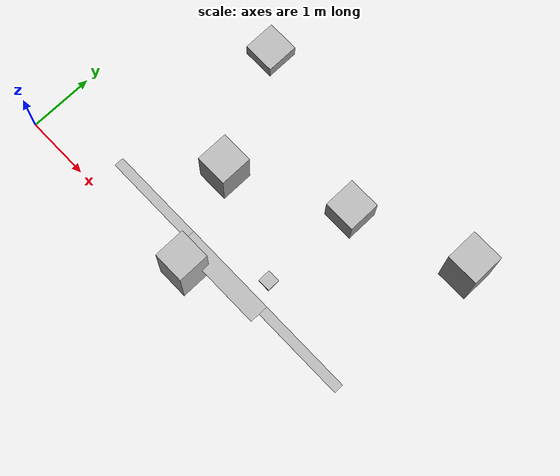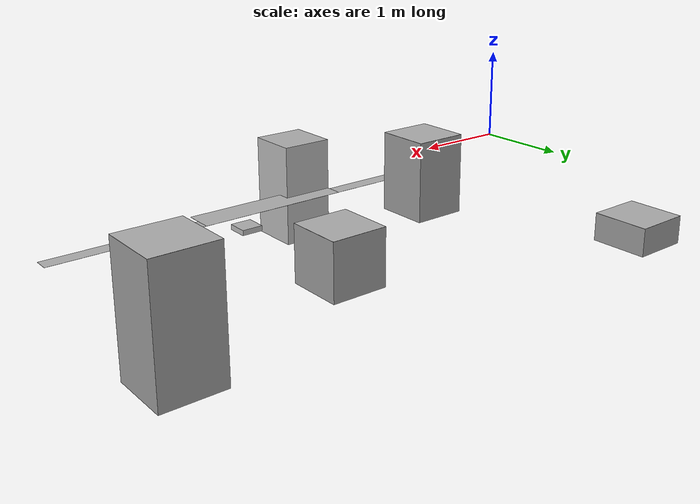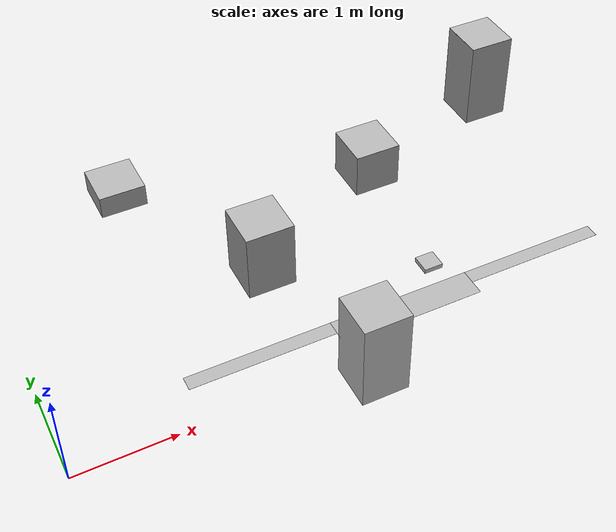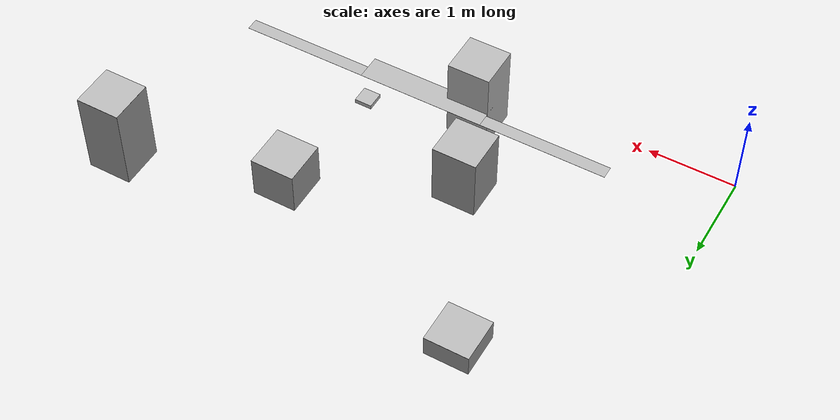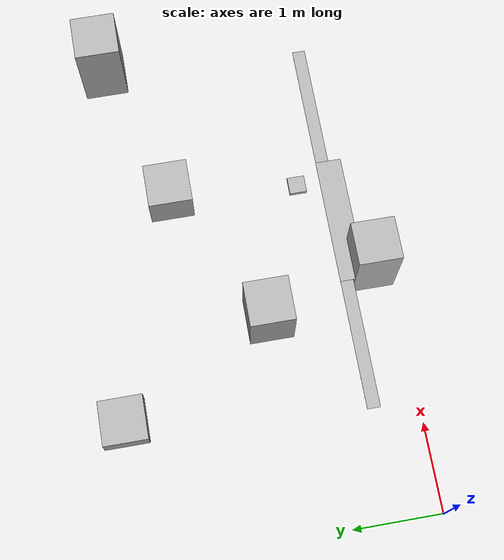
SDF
<sdf version="1.5">
 <world name="default">
  <include><uri>model://sun</uri></include>
  <include><uri>model://box-25</uri><name>box_25-1</name><pose>1.54635 3.2342 0.0 0 0 1.5708</pose></include>
  <include><uri>model://box-50</uri><name>box_50-1</name><pose>4.091 2.34534 0.0 0 0 3.1415</pose></include>
  <include><uri>model://box-75</uri><name>box_75-1</name><pose>2.45 1.47 0.0 0 0 0</pose></include>
  <include><uri>model://box-100</uri><name>box_100-1</name><pose>5.809 2.89 0.0 0 0 0</pose></include>
  <include><uri>model://line-15</uri><name>line-15-1</name><pose>2.0 0.5 0.0 0 0 0</pose></include>
  <include><uri>model://line-fat-15</uri><name>line-fat-15-1</name><pose>3.5 0.425738 0.0 0 0 0</pose></include>
  <include><uri>model://line-15</uri><name>line-15-2</name><pose>5.0 0.5 0.0 0 0 0</pose></include>
  <include><uri>model://redSquare</uri><name>redSquare-1</name><pose>3.0 0.15 0.01 0 0 0</pose></include>
  <include><uri>model://blueSquare</uri><name>blueSquare-1</name><pose>4.0 0.85 0.01 0 0 0</pose></include>
  <scene>
   <ambient>0.8 0.8 0.8 1</ambient>
   <background>0.8 0.9 1 1</background>
   <shadows>false</shadows>
   <grid>false</grid>
   <origin_visual>false</origin_visual>
  </scene>
  <physics name="default_physics" default="0" type="ode">
   <gravity>0 0 -9.8066</gravity>
   <ode>
    <solver>
     <type>quick</type>
     <iters>10</iters>
     <sor>1.3</sor>
     <use_dynamic_moi_rescaling>0</use_dynamic_moi_rescaling>
    </solver>
    <constraints>
     <cfm>0</cfm>
     <erp>0.2</erp>
     <contact_max_correcting_vel>100</contact_max_correcting_vel>
     <contact_surface_layer>0.001</contact_surface_layer>
    </constraints>
   </ode>
   <max_step_size>0.004</max_step_size>
   <real_time_factor>1</real_time_factor>
   <real_time_update_rate>250</real_time_update_rate>
   <magnetic_field>6.0e-6 2.3e-5 -4.2e-5</magnetic_field>
  </physics>
 </world>
</sdf>

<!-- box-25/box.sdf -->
<sdf version="1.5">
    <model name="box-25">
        <static>true</static>
        <link name="box-25_link">
            <pose>0.0 0.0 0.125 0 0 0</pose>
            <visual name="visual_box-25">
                <cast_shadows>false</cast_shadows>
                <geometry>
                    <box>
                        <size>0.5 0.5 0.25</size>
                    </box>
                </geometry>
                <material>
                    <script>
                        <uri>file://media/materials/scripts/gazebo.material</uri>
                        <name>Gazebo/Grey</name>
                    </script>
                </material>
            </visual>

            <collision name="collision_box-25">
                <geometry>
                    <box>
                        <size>0.5 0.5 0.25</size>
                    </box>
                </geometry>
            </collision>
        </link>

        <link name="box-25-clever_link">
            <pose>0.0 0.0 0.25 0 0 0</pose>
            <visual name="visual_box-25-clever">
                <cast_shadows>false</cast_shadows>
                <geometry>
                    <box>
                        <size>0.5 0.5 1e-3</size>
                    </box>
                </geometry>
                <material>
                    <script>
                        <uri>model://box-25/materials/scripts</uri>
                        <uri>model://box-25/materials/textures</uri>
                        <name>box25/qr-code</name>
                    </script>
                </material>
            </visual>
        </link>
    </model>
</sdf>

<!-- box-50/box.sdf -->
<sdf version="1.5">
    <model name="box-50">
        <static>true</static>
        <link name="box-50_link">
            <pose>0.0 0.0 0.25 0 0 0</pose>
            <visual name="visual_box-50">
                <cast_shadows>false</cast_shadows>
                <geometry>
                    <box>
                        <size>0.5 0.5 0.5</size>
                    </box>
                </geometry>
                <material>
                    <script>
                        <uri>file://media/materials/scripts/gazebo.material</uri>
                        <name>Gazebo/Grey</name>
                    </script>
                </material>
            </visual>

            <collision name="collision_box-25">
                <geometry>
                    <box>
                        <size>0.5 0.5 0.5</size>
                    </box>
                </geometry>
            </collision>
        </link>

        <link name="box-50-clever_link">
            <pose>0.0 0.0 0.5 0 0 0</pose>
            <visual name="visual_box-50-clever">
                <cast_shadows>false</cast_shadows>
                <geometry>
                    <box>
                        <size>0.5 0.5 1e-3</size>
                    </box>
                </geometry>
                <material>
                    <script>
                        <uri>model://box-50/materials/scripts</uri>
                        <uri>model://box-50/materials/textures</uri>
                        <name>box50/qr-code</name>
                    </script>
                </material>
            </visual>
        </link>
    </model>
</sdf>

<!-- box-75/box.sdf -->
<sdf version="1.5">
    <model name="box-75">
        <static>true</static>
        <link name="box-75_link">
            <pose>0.0 0.0 0.375 0 0 0</pose>
            <visual name="visual_box-75">
                <cast_shadows>false</cast_shadows>
                <geometry>
                    <box>
                        <size>0.5 0.5 0.75</size>
                    </box>
                </geometry>
                <material>
                    <script>
                        <uri>file://media/materials/scripts/gazebo.material</uri>
                        <name>Gazebo/Grey</name>
                    </script>
                </material>
            </visual>

            <collision name="collision_box-75">
                <geometry>
                    <box>
                        <size>0.5 0.5 0.75</size>
                    </box>
                </geometry>
            </collision>
        </link>

        <link name="box-75-clever_link">
            <pose>0.0 0.0 0.75 0 0 0</pose>
            <visual name="visual_box-75-clever">
                <cast_shadows>false</cast_shadows>
                <geometry>
                    <box>
                        <size>0.5 0.5 1e-3</size>
                    </box>
                </geometry>
                <material>
                    <script>
                        <uri>model://box-75/materials/scripts</uri>
                        <uri>model://box-75/materials/textures</uri>
                        <name>box/qr-code</name>
                    </script>
                </material>
            </visual>
        </link>
    </model>
</sdf>

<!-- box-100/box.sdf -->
<sdf version="1.5">
    <model name="box-100">
        <static>true</static>
        <link name="box-100_link">
            <pose>0.0 0.0 0.5 0 0 0</pose>
            <visual name="visual_box-100">
                <cast_shadows>false</cast_shadows>
                <geometry>
                    <box>
                        <size>0.5 0.5 1.00</size>
                    </box>
                </geometry>
                <material>
                    <script>
                        <uri>file://media/materials/scripts/gazebo.material</uri>
                        <name>Gazebo/Grey</name>
                    </script>
                </material>
            </visual>

            <collision name="collision_box-100">
                <geometry>
                    <box>
                        <size>0.5 0.5 1.00</size>
                    </box>
                </geometry>
            </collision>
        </link>

        <link name="box-100-clever_link">
            <pose>0.0 0.0 1.00 0 0 0</pose>
            <visual name="visual_box-100-clever">
                <cast_shadows>false</cast_shadows>
                <geometry>
                    <box>
                        <size>0.5 0.5 1e-3</size>
                    </box>
                </geometry>
                <material>
                    <script>
                        <uri>model://box-100/materials/scripts</uri>
                        <uri>model://box-100/materials/textures</uri>
                        <name>box100/qr-code</name>
                    </script>
                </material>
            </visual>
        </link>
    </model>
</sdf>

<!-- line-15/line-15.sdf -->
<sdf version="1.5">
    <model name="line-15">
        <static>true</static>
        <link name="line-15_link">
            <pose>0.0 0.0 1e-3 0 0 0</pose>
            <visual name="visual_line-15">
                <cast_shadows>false</cast_shadows>
                <geometry>
                    <box>
                        <size>1.5 0.15 1e-3</size>
                    </box>
                </geometry>
                <material>
                    <script>
                        <uri>model://line-15/materials/scripts</uri>
                        <uri>model://line-15/materials/textures</uri>
                        <name>line/line-15</name>
                    </script>
                </material>
            </visual>
        </link>
    </model>
</sdf>

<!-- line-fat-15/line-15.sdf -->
<sdf version="1.5">
    <model name="line-fat-15">
        <static>true</static>
        <link name="line-fat-15_link">
            <pose>0.0 0.0 1e-3 0 0 0</pose>
            <visual name="visual_line-fat-15">
                <cast_shadows>false</cast_shadows>
                <geometry>
                    <box>
                        <size>1.5 0.3 1e-3</size>
                    </box>
                </geometry>
                <material>
                    <script>
                        <uri>model://line-fat-15/materials/scripts</uri>
                        <uri>model://line-fat-15/materials/textures</uri>
                        <name>line/line-15</name>
                    </script>
                </material>
            </visual>
        </link>
    </model>
</sdf>

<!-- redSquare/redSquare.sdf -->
<sdf version='1.5'>
  <model name='redSquare'>
    <static>true</static>
    <link name="link">
      <collision name="collision">
        <geometry>
          <box>
            <size>0.5 0.5 1.0</size>
          </box>
        </geometry>
      </collision>
      <visual name="visual">
        <cast_shadows>false</cast_shadows>
        <geometry>
          <box>
            <size>0.5 0.5 1.0</size>
          </box>
        </geometry>
        <material>
          <script>
            <uri>model://redSquare/materials/scripts</uri>
            <uri>model://redSquare/materials/textures</uri>
            <name>redSquare/Image</name>
          </script>
        </material>
      </visual>
    </link>
  </model>
</sdf>

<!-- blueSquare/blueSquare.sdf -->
<sdf version='1.5'>
  <model name='blueSquare'>
    <static>true</static>
    <link name="link">
      <collision name="collision">
        <geometry>
          <box>
            <size>0.2 0.2 .05</size>
          </box>
        </geometry>
      </collision>
      <visual name="visual">
        <cast_shadows>false</cast_shadows>
        <geometry>
          <box>
            <size>0.2 0.2 .05</size>
          </box>
        </geometry>
        <material>
          <script>
            <uri>model://blueSquare/materials/scripts</uri>
            <uri>model://blueSquare/materials/textures</uri>
            <name>blueSquare/Image</name>
          </script>
        </material>
      </visual>
    </link>
  </model>
</sdf>
